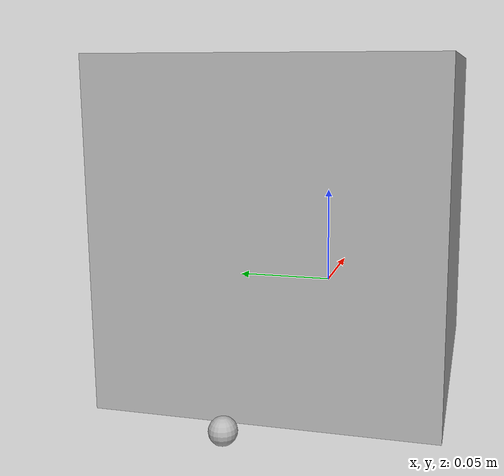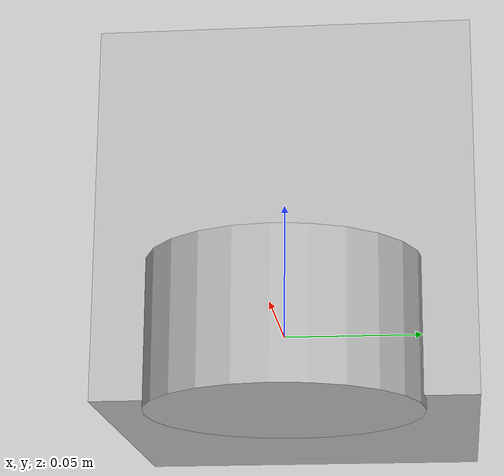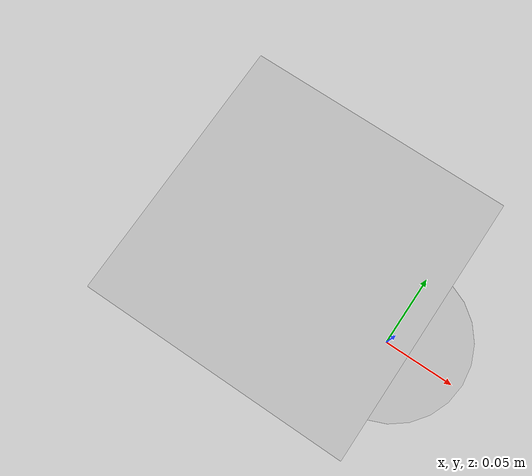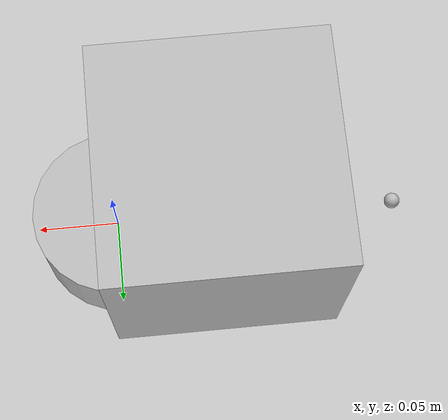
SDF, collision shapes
<?xml version="1.0" ?>
<sdf version="1.9">
  <model name="turtlebot3_burger">
    <pose>0 0 0 0 0 0</pose>

    <!--  PLUGINS                                    -->
    <plugin
      filename="gz-sim-diff-drive-system"
      name="gz::sim::systems::DiffDrive">
      <left_joint>wheel_left_joint</left_joint>
      <right_joint>wheel_right_joint</right_joint>
      <wheel_separation>0.160</wheel_separation>
      <wheel_radius>0.033</wheel_radius>
      <odom_publish_frequency>30</odom_publish_frequency>
      <topic>cmd_vel</topic>
      <odom_topic>odom</odom_topic>
      <frame_id>odom</frame_id>
      <child_frame_id>base_footprint</child_frame_id>
    </plugin>

    <plugin
      filename="gz-sim-joint-state-publisher-system"
      name="gz::sim::systems::JointStatePublisher">
    </plugin>

    <!--  BASE                                       -->
    <link name="base_footprint"/>

    <joint name="base_joint" type="fixed">
      <parent>base_footprint</parent>
      <child>base_link</child>
      <pose>0 0 0.010 0 0 0</pose>
    </joint>

    <link name="base_link">
      <inertial>
        <pose>-0.064 0 0.048 0 0 0</pose>
        <inertia>
          <ixx>0.001</ixx><ixy>0.000</ixy><ixz>0.000</ixz>
          <iyy>0.001</iyy><iyz>0.000</iyz>
          <izz>0.001</izz>
        </inertia>
        <mass>1.0</mass>
      </inertial>

      <collision name="base_collision">
        <pose>-0.064 0 0.048 0 0 0</pose>
        <geometry>
          <box><size>0.140 0.140 0.143</size></box>
        </geometry>
      </collision>

      <visual name="base_visual">
        <pose>-0.064 0 0 0 0 0</pose>
        <geometry>
          <mesh>
            <uri>model://turtlebot3_burger/meshes/burger_base.dae</uri>
            <scale>0.001 0.001 0.001</scale>
          </mesh>
        </geometry>
      </visual>
    </link>

    <!--  WHEELS                                     -->
    <joint name="wheel_left_joint" type="revolute">
      <parent>base_link</parent>
      <child>wheel_left_link</child>
      <pose>0 0.080 0.023 -1.5707963 0 0</pose>
      <axis>
        <xyz>0 0 1</xyz>
        <limit><lower>-1e+16</lower><upper>1e+16</upper></limit>
      </axis>
    </joint>

    <link name="wheel_left_link">
      <inertial>
        <mass>0.1</mass>
        <inertia>
          <ixx>0.001</ixx><ixy>0.000</ixy><ixz>0.000</ixz>
          <iyy>0.001</iyy><iyz>0.000</iyz>
          <izz>0.001</izz>
        </inertia>
      </inertial>
      <collision name="wheel_left_collision">
        <geometry>
          <cylinder><radius>0.033</radius><length>0.018</length></cylinder>
        </geometry>
        <surface>
          <friction><ode><mu>100</mu><mu2>100</mu2></ode></friction>
        </surface>
      </collision>
      <visual name="wheel_left_visual">
        <geometry>
          <mesh>
            <uri>model://turtlebot3_burger/meshes/left_tire.dae</uri>
            <scale>0.001 0.001 0.001</scale>
          </mesh>
        </geometry>
      </visual>
    </link>

    <joint name="wheel_right_joint" type="revolute">
      <parent>base_link</parent>
      <child>wheel_right_link</child>
      <pose>0 -0.080 0.023 -1.5707963 0 0</pose>
      <axis>
        <xyz>0 0 1</xyz>
        <limit><lower>-1e+16</lower><upper>1e+16</upper></limit>
      </axis>
    </joint>

    <link name="wheel_right_link">
      <inertial>
        <mass>0.1</mass>
        <inertia>
          <ixx>0.001</ixx><ixy>0.000</ixy><ixz>0.000</ixz>
          <iyy>0.001</iyy><iyz>0.000</iyz>
          <izz>0.001</izz>
        </inertia>
      </inertial>
      <collision name="wheel_right_collision">
        <geometry>
          <cylinder><radius>0.033</radius><length>0.018</length></cylinder>
        </geometry>
        <surface>
          <friction><ode><mu>100</mu><mu2>100</mu2></ode></friction>
        </surface>
      </collision>
      <visual name="wheel_right_visual">
        <geometry>
          <mesh>
            <uri>model://turtlebot3_burger/meshes/right_tire.dae</uri>
            <scale>0.001 0.001 0.001</scale>
          </mesh>
        </geometry>
      </visual>
    </link>

    <!-- caster wheel -->
    <joint name="caster_back_joint" type="ball">
      <parent>base_link</parent>
      <child>caster_back_link</child>
    </joint>

    <link name="caster_back_link">
      <pose>-0.177 0 -0.005 0 0 0</pose>
      <inertial>
        <mass>0.001</mass>
        <inertia>
          <ixx>0.00001</ixx><ixy>0</ixy><ixz>0</ixz>
          <iyy>0.00001</iyy><iyz>0</iyz>
          <izz>0.00001</izz>
        </inertia>
      </inertial>
      <collision name="caster_back_collision">
        <geometry>
          <sphere><radius>0.005</radius></sphere>
        </geometry>
        <surface>
          <friction><ode><mu>0</mu><mu2>0</mu2></ode></friction>
        </surface>
      </collision>
    </link>

    <!--  LIDAR                                      -->
    <joint name="lidar_joint" type="fixed">
      <parent>base_link</parent>
      <child>base_scan</child>
      <pose>-0.032 0 0.171 0 0 0</pose>
    </joint>

    <link name="base_scan">
      <inertial>
        <mass>0.125</mass>
        <inertia>
          <ixx>0.001</ixx><ixy>0</ixy><ixz>0</ixz>
          <iyy>0.001</iyy><iyz>0</iyz>
          <izz>0.001</izz>
        </inertia>
      </inertial>

      <collision name="lidar_collision">
        <geometry>
          <cylinder><radius>0.0508</radius><length>0.055</length></cylinder>
        </geometry>
      </collision>

      <visual name="lidar_visual">
        <geometry>
          <cylinder><radius>0.0508</radius><length>0.055</length></cylinder>
        </geometry>
      </visual>

      <!-- ✅ THIS IS THE KEY PART — gpu_lidar for Gazebo Sim -->
      <sensor name="lidar" type="gpu_lidar">
        <always_on>true</always_on>
        <visualize>true</visualize>
        <update_rate>5</update_rate>
        <topic>scan</topic>
        <gz_frame_id>base_scan</gz_frame_id>
        <ray>
          <scan>
            <horizontal>
              <samples>360</samples>
              <resolution>1</resolution>
              <min_angle>0</min_angle>
              <max_angle>6.28318530718</max_angle>
            </horizontal>
          </scan>
          <range>
            <min>0.120</min>
            <max>3.5</max>
            <resolution>0.015</resolution>
          </range>
          <noise>
            <type>gaussian</type>
            <mean>0.0</mean>
            <stddev>0.01</stddev>
          </noise>
        </ray>
      </sensor>
    </link>

  </model>
</sdf>
